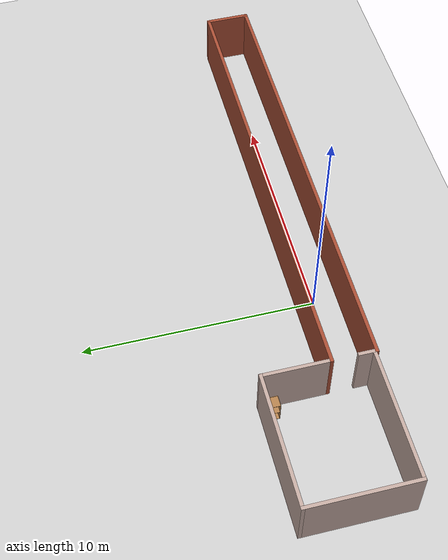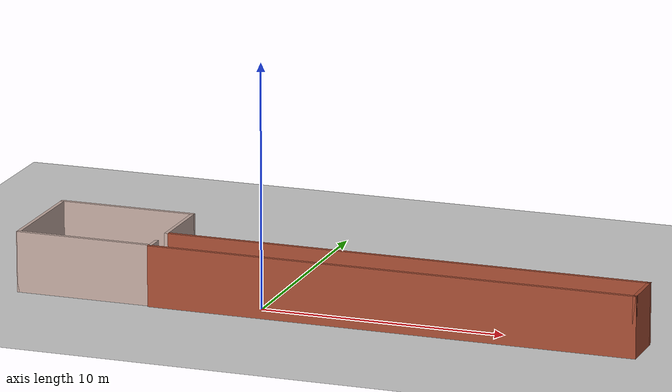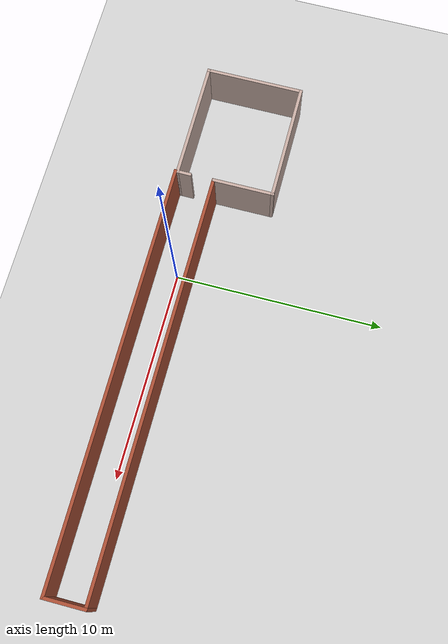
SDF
<sdf version="1.6">
 <world name="default">
  <light name="sun" type="directional">
   <pose>0 0 10 0 -0 0</pose>
   <diffuse>0.8 0.8 0.8 1</diffuse>
   <specular>0.2 0.2 0.2 1</specular>
   <attenuation>
    <range>1000</range>
    <constant>0.9</constant>
    <linear>0.01</linear>
    <quadratic>0.001</quadratic>
   </attenuation>
   <direction>-0.5 0.1 -0.9</direction>
  </light>
  <model name="ground_plane">
   <static>1</static>
   <link name="link">
    <collision name="collision">
     <geometry><plane><normal>0 0 1</normal><size>100 100</size></plane></geometry>
     <surface>
      <contact><collide_bitmask>65535</collide_bitmask></contact>
      <friction><ode><mu>100</mu><mu2>50</mu2></ode></friction>
     </surface>
    </collision>
    <visual name="visual">
     <cast_shadows>0</cast_shadows>
     <geometry><plane><normal>0 0 1</normal><size>100 100</size></plane></geometry>
     <material>
      <script><uri>file://media/materials/scripts/gazebo.material</uri><name>Gazebo/Grey</name></script>
     </material>
    </visual>
   </link>
  </model>
  <gravity>0 0 -9.8</gravity>
  <magnetic_field>6e-06 2.3e-05 -4.2e-05</magnetic_field>
  <atmosphere type="adiabatic"/>
  <physics name="default_physics" default="0" type="ode">
   <max_step_size>0.001</max_step_size>
   <real_time_factor>1</real_time_factor>
   <real_time_update_rate>1000</real_time_update_rate>
  </physics>
  <scene><ambient>0.4 0.4 0.4 1</ambient><background>0.7 0.7 0.7 1</background><shadows>1</shadows></scene>
  <audio><device>default</device></audio>
  <spherical_coordinates>
   <surface_model>EARTH_WGS84</surface_model>
   <latitude_deg>0</latitude_deg>
   <longitude_deg>0</longitude_deg>
   <elevation>0</elevation>
   <heading_deg>0</heading_deg>
  </spherical_coordinates>
  <model name="20m_corridor">
   <pose>2.85775 1.23388 0 0 -0 0</pose>
   <link name="Wall_19">
    <collision name="Wall_19_Collision">
     <geometry><box><size>20 0.15 2.5</size></box></geometry>
     <pose>0 0 1.25 0 -0 0</pose>
    </collision>
    <visual name="Wall_19_Visual">
     <pose>0 0 1.25 0 -0 0</pose>
     <geometry><box><size>20 0.15 2.5</size></box></geometry>
     <material>
      <script><uri>file://media/materials/scripts/gazebo.material</uri><name>Gazebo/Bricks</name></script>
      <ambient>1 1 1 1</ambient>
     </material>
     <meta><layer>0</layer></meta>
    </visual>
    <pose>2.8 -2.35 0 0 -0 0</pose>
   </link>
   <link name="Wall_20">
    <collision name="Wall_20_Collision">
     <geometry><box><size>2 0.15 2.5</size></box></geometry>
     <pose>0 0 1.25 0 -0 0</pose>
    </collision>
    <visual name="Wall_20_Visual">
     <pose>0 0 1.25 0 -0 0</pose>
     <geometry><box><size>2 0.15 2.5</size></box></geometry>
     <material>
      <script><uri>file://media/materials/scripts/gazebo.material</uri><name>Gazebo/Bricks</name></script>
      <ambient>1 1 1 1</ambient>
     </material>
     <meta><layer>0</layer></meta>
    </visual>
    <pose>12.725 -1.425 0 0 -0 1.5708</pose>
   </link>
   <link name="Wall_21">
    <collision name="Wall_21_Collision">
     <geometry><box><size>20 0.15 2.5</size></box></geometry>
     <pose>0 0 1.25 0 -0 0</pose>
    </collision>
    <visual name="Wall_21_Visual">
     <pose>0 0 1.25 0 -0 0</pose>
     <geometry><box><size>20 0.15 2.5</size></box></geometry>
     <material>
      <script><uri>file://media/materials/scripts/gazebo.material</uri><name>Gazebo/Bricks</name></script>
      <ambient>1 1 1 1</ambient>
     </material>
     <meta><layer>0</layer></meta>
    </visual>
    <pose>2.8 -0.5 0 0 -0 3.14159</pose>
   </link>
   <link name="Wall_22">
    <collision name="Wall_22_Collision">
     <geometry><box><size>3 0.15 2.5</size></box></geometry>
     <pose>0 0 1.25 0 -0 0</pose>
    </collision>
    <visual name="Wall_22_Visual">
     <pose>0 0 1.25 0 -0 0</pose>
     <geometry><box><size>3 0.15 2.5</size></box></geometry>
     <material>
      <script><uri>file://media/materials/scripts/gazebo.material</uri><name>Gazebo/Grey</name></script>
      <ambient>0.760784 0.662745 0.627451 1</ambient>
     </material>
     <meta><layer>0</layer></meta>
    </visual>
    <pose>-7.125 0.925 0 0 -0 1.5708</pose>
   </link>
   <link name="Wall_23">
    <collision name="Wall_23_Collision">
     <geometry><box><size>5.75 0.15 2.5</size></box></geometry>
     <pose>0 0 1.25 0 -0 0</pose>
    </collision>
    <visual name="Wall_23_Visual">
     <pose>0 0 1.25 0 -0 0</pose>
     <geometry><box><size>5.75 0.15 2.5</size></box></geometry>
     <material>
      <script><uri>file://media/materials/scripts/gazebo.material</uri><name>Gazebo/Grey</name></script>
      <ambient>0.760784 0.662745 0.627451 1</ambient>
     </material>
     <meta><layer>0</layer></meta>
    </visual>
    <pose>-9.925 2.35 0 0 -0 3.14159</pose>
   </link>
   <link name="Wall_24">
    <collision name="Wall_24_Collision">
     <geometry><box><size>4.75 0.15 2.5</size></box></geometry>
     <pose>0 0 1.25 0 -0 0</pose>
    </collision>
    <visual name="Wall_24_Visual">
     <pose>0 0 1.25 0 -0 0</pose>
     <geometry><box><size>4.75 0.15 2.5</size></box></geometry>
     <material>
      <script><uri>file://media/materials/scripts/gazebo.material</uri><name>Gazebo/Grey</name></script>
      <ambient>0.760784 0.662745 0.627451 1</ambient>
     </material>
     <meta><layer>0</layer></meta>
    </visual>
    <pose>-12.725 0.05 0 0 -0 -1.5708</pose>
   </link>
   <link name="Wall_25">
    <collision name="Wall_25_Collision">
     <geometry><box><size>5.75 0.15 2.5</size></box></geometry>
     <pose>0 0 1.25 0 -0 0</pose>
    </collision>
    <visual name="Wall_25_Visual">
     <pose>0 0 1.25 0 -0 0</pose>
     <geometry><box><size>5.75 0.15 2.5</size></box></geometry>
     <material>
      <script><uri>file://media/materials/scripts/gazebo.material</uri><name>Gazebo/Grey</name></script>
      <ambient>0.760784 0.662745 0.627451 1</ambient>
     </material>
     <meta><layer>0</layer></meta>
    </visual>
    <pose>-9.925 -2.25 0 0 -0 0</pose>
   </link>
   <link name="Wall_26">
    <collision name="Wall_26_Collision">
     <geometry><box><size>0.75 0.15 2.5</size></box></geometry>
     <pose>0 0 1.25 0 -0 0</pose>
    </collision>
    <visual name="Wall_26_Visual">
     <pose>0 0 1.25 0 -0 0</pose>
     <geometry><box><size>0.75 0.15 2.5</size></box></geometry>
     <material>
      <script><uri>file://media/materials/scripts/gazebo.material</uri><name>Gazebo/Grey</name></script>
      <ambient>0.760784 0.662745 0.627451 1</ambient>
     </material>
     <meta><layer>0</layer></meta>
    </visual>
    <pose>-7.125 -1.95 0 0 -0 1.5708</pose>
   </link>
   <static>1</static>
  </model>
  <model name="cabinet">
   <static>1</static>
   <link name="cabinet_bottom_plate">
    <inertial>
     <pose>0 0 -1 0 -0 0</pose>
     <inertia><ixx>2.05</ixx><ixy>0</ixy><ixz>0</ixz><iyy>2.05</iyy><iyz>0</iyz><izz>2.05</izz></inertia>
     <mass>25</mass>
    </inertial>
    <collision name="cabinet_bottom_plate_geom">
     <pose>0 0 0.01 0 -0 0</pose>
     <geometry><box><size>0.45 0.45 0.02</size></box></geometry>
    </collision>
    <visual name="cabinet_bottom_plate_geom_visual">
     <pose>0 0 0.01 0 -0 0</pose>
     <geometry><box><size>0.45 0.45 0.02</size></box></geometry>
     <material>
      <script><uri>file://media/materials/scripts/gazebo.material</uri><name>Gazebo/Wood</name></script>
     </material>
    </visual>
    <collision name="cabinet_bottom_plate_geom_cabinet_back_plate">
     <pose>0.235 0 0.51 0 -0 0</pose>
     <geometry><box><size>0.02 0.45 1.02</size></box></geometry>
    </collision>
    <visual name="cabinet_bottom_plate_geom_cabinet_back_plate_visual">
     <pose>0.235 0 0.51 0 -0 0</pose>
     <geometry><box><size>0.02 0.45 1.02</size></box></geometry>
     <material>
      <script><uri>file://media/materials/scripts/gazebo.material</uri><name>Gazebo/Wood</name></script>
     </material>
    </visual>
    <collision name="cabinet_bottom_plate_geom_cabinet_left_plate">
     <pose>0 0.235 0.51 0 -0 0</pose>
     <geometry><box><size>0.45 0.02 1.02</size></box></geometry>
    </collision>
    <visual name="cabinet_bottom_plate_geom_cabinet_left_plate_visual">
     <pose>0 0.235 0.51 0 -0 0</pose>
     <geometry><box><size>0.45 0.02 1.02</size></box></geometry>
     <material>
      <script><uri>file://media/materials/scripts/gazebo.material</uri><name>Gazebo/Wood</name></script>
     </material>
    </visual>
    <collision name="cabinet_bottom_plate_geom_cabinet_middle_plate">
     <pose>0 0 0.51 0 -0 0</pose>
     <geometry><box><size>0.45 0.45 0.02</size></box></geometry>
    </collision>
    <visual name="cabinet_bottom_plate_geom_cabinet_middle_plate_visual">
     <pose>0 0 0.51 0 -0 0</pose>
     <geometry><box><size>0.45 0.45 0.02</size></box></geometry>
     <material>
      <script><uri>file://media/materials/scripts/gazebo.material</uri><name>Gazebo/Wood</name></script>
     </material>
    </visual>
    <collision name="cabinet_bottom_plate_geom_cabinet_right_plate">
     <pose>0 -0.235 0.51 0 -0 0</pose>
     <geometry><box><size>0.45 0.02 1.02</size></box></geometry>
    </collision>
    <visual name="cabinet_bottom_plate_geom_cabinet_right_plate_visual">
     <pose>0 -0.235 0.51 0 -0 0</pose>
     <geometry><box><size>0.45 0.02 1.02</size></box></geometry>
     <material>
      <script><uri>file://media/materials/scripts/gazebo.material</uri><name>Gazebo/Wood</name></script>
     </material>
    </visual>
    <collision name="cabinet_bottom_plate_geom_cabinet_top_plate">
     <pose>0 0 1.01 0 -0 0</pose>
     <geometry><box><size>0.45 0.45 0.02</size></box></geometry>
    </collision>
    <visual name="cabinet_bottom_plate_geom_cabinet_top_plate_visual">
     <pose>0 0 1.01 0 -0 0</pose>
     <geometry><box><size>0.45 0.45 0.02</size></box></geometry>
     <material>
      <script><uri>file://media/materials/scripts/gazebo.material</uri><name>Gazebo/Wood</name></script>
     </material>
    </visual>
   </link>
   <pose>-4.71992 3.14017 0 0 -0 0</pose>
  </model>
  <plugin filename="libcollision_map_creator.so" name="collision_map_creator"/>
 </world>
</sdf>
